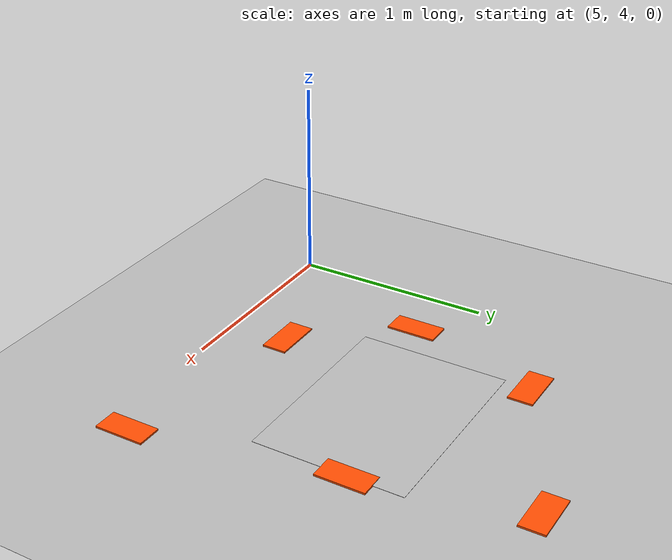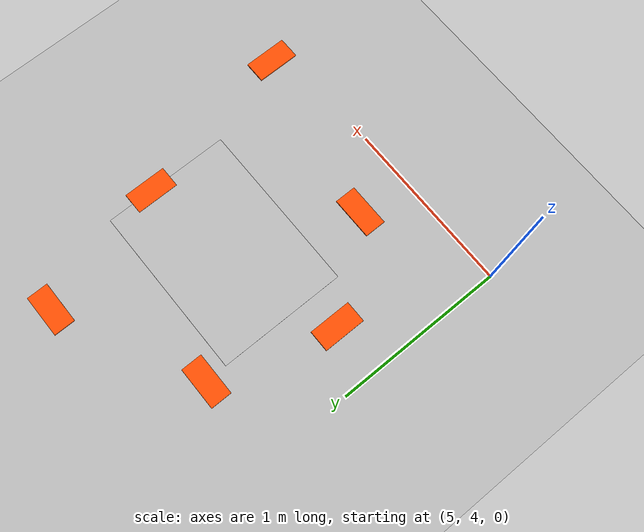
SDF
<sdf version="1.5">
 <world name="default">
  <include><uri>model://sun</uri></include>
  <include><uri>model://aruco_206</uri><pose>4.5 4.5 0 0 0 0</pose></include>
  <include><uri>model://aruco_201</uri><pose>6 5 0.005 0 0 0</pose></include>
  <include><uri>model://boat_a</uri><name>boat_a_1</name><pose>6.5 5.1 0 0 0 0</pose></include>
  <include><uri>model://boat_a</uri><name>boat_a_2</name><pose>6.3 5.9 0 0 0 1.5707963267948966</pose></include>
  <include><uri>model://boat_a</uri><name>boat_a_3</name><pose>5.3 4.8 0 0 0 0</pose></include>
  <include><uri>model://boat_a</uri><name>boat_a_4</name><pose>5.5 5.5 0 0 0 1.5707963267948966</pose></include>
  <include><uri>model://boat_a</uri><name>boat_a_5</name><pose>6.7 4.1 0 0 0 0</pose></include>
  <include><uri>model://boat_a</uri><name>boat_a_6</name><pose>5.7 4.3 0 0 0 1.5707963267948966</pose></include>
  <scene>
   <ambient>0.8 0.8 0.8 1</ambient>
   <background>0.8 0.9 1 1</background>
   <shadows>false</shadows>
   <grid>false</grid>
   <origin_visual>false</origin_visual>
  </scene>
  <physics name="default_physics" default="0" type="ode">
   <gravity>0 0 -9.8066</gravity>
   <ode>
    <solver>
     <type>quick</type>
     <iters>10</iters>
     <sor>1.3</sor>
     <use_dynamic_moi_rescaling>0</use_dynamic_moi_rescaling>
    </solver>
    <constraints>
     <cfm>0</cfm>
     <erp>0.2</erp>
     <contact_max_correcting_vel>100</contact_max_correcting_vel>
     <contact_surface_layer>0.001</contact_surface_layer>
    </constraints>
   </ode>
   <max_step_size>0.004</max_step_size>
   <real_time_factor>1</real_time_factor>
   <real_time_update_rate>250</real_time_update_rate>
   <magnetic_field>6.0e-6 2.3e-5 -4.2e-5</magnetic_field>
  </physics>
 </world>
</sdf>

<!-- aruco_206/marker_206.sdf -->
<sdf version="1.5">
    <model name="aruco_206">
        <static>true</static>
        <link name="marker_206_link">
            <pose>0 0 1e-3 0 0 1.5707963267948966</pose>
            <visual name="visual_marker_206">
                <cast_shadows>false</cast_shadows>
                <geometry>
                    <box>
                        <size>11 11 1e-4</size>
                    </box>
                </geometry>
                <material>
                    <script>
                        <uri>model://aruco_206/materials/scripts</uri>
                        <uri>model://aruco_206/materials/textures</uri>
                        <name>aruco/marker_206</name>
                    </script>
                </material>
            </visual>
        </link>
    </model>
</sdf>

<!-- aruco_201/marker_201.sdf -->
<sdf version="1.5">
  <model name="aruco_201">
    <static>true</static>
    <link name="marker_201_link">
      <pose>0 0 1e-3 0 0 1.5707963267948966</pose>
      <visual name="visual_marker_201">
        <cast_shadows>false</cast_shadows>
        <geometry>
          <box>
            <size>0.75 1 1e-3</size>
          </box>
        </geometry>
        <material>
          <script>
            <uri>model://aruco_201/materials/scripts</uri>
            <uri>model://aruco_201/materials/textures</uri>
            <name>aruco/marker_201</name>
          </script>
        </material>
      </visual>
    </link>
  </model>
</sdf>

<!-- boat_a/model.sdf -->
<sdf version='1.6'>
  <model name='boat_a'>
    <link name='link'>
      <inertial>
        <mass>1</mass>
        <inertia>
          <ixx>0.166667</ixx>
          <ixy>0</ixy>
          <ixz>0</ixz>
          <iyy>0.166667</iyy>
          <iyz>0</iyz>
          <izz>0.166667</izz>
        </inertia>
        <pose frame=''>0 0 0 0 -0 0</pose>
      </inertial>
      <self_collide>0</self_collide>
      <enable_wind>0</enable_wind>
      <kinematic>0</kinematic>
      <pose frame=''>0 0 0 0 -0 0</pose>
      <gravity>1</gravity>
      <visual name='visual'>
        <geometry>
          <box>
            <size>0.125 0.25 0.02</size>
          </box>
        </geometry>
        <material>
          <script>
            <name>Gazebo/Grey</name>
            <uri>file://media/materials/scripts/gazebo.material</uri>
          </script>
          <shader type='pixel'>
            <normal_map>__default__</normal_map>
          </shader>
          <ambient>1 0.3 0 1</ambient>
          <diffuse>1 0.3 0 1</diffuse>
          <specular>0 0 0 1</specular>
          <emissive>0 0 0 1</emissive>
        </material>
        <pose frame=''>0 0 0 0 -0 0</pose>
        <transparency>0</transparency>
        <cast_shadows>1</cast_shadows>
      </visual>
      <collision name='collision'>
        <laser_retro>0</laser_retro>
        <max_contacts>10</max_contacts>
        <pose frame=''>0 0 0 0 -0 0</pose>
        <geometry>
          <box>
            <size>0.125 0.25 0.02</size>
          </box>
        </geometry>
        <surface>
          <friction>
            <ode>
              <mu>1</mu>
              <mu2>1</mu2>
              <fdir1>0 0 0</fdir1>
              <slip1>0</slip1>
              <slip2>0</slip2>
            </ode>
            <torsional>
              <coefficient>1</coefficient>
              <patch_radius>0</patch_radius>
              <surface_radius>0</surface_radius>
              <use_patch_radius>1</use_patch_radius>
              <ode>
                <slip>0</slip>
              </ode>
            </torsional>
          </friction>
          <bounce>
            <restitution_coefficient>0</restitution_coefficient>
            <threshold>1e+06</threshold>
          </bounce>
          <contact>
            <collide_without_contact>0</collide_without_contact>
            <collide_without_contact_bitmask>1</collide_without_contact_bitmask>
            <collide_bitmask>1</collide_bitmask>
            <ode>
              <soft_cfm>0</soft_cfm>
              <soft_erp>0.2</soft_erp>
              <kp>1e+13</kp>
              <kd>1</kd>
              <max_vel>0.01</max_vel>
              <min_depth>0</min_depth>
            </ode>
            <bullet>
              <split_impulse>1</split_impulse>
              <split_impulse_penetration_threshold>-0.01</split_impulse_penetration_threshold>
              <soft_cfm>0</soft_cfm>
              <soft_erp>0.2</soft_erp>
              <kp>1e+13</kp>
              <kd>1</kd>
            </bullet>
          </contact>
        </surface>
      </collision>
    </link>
    <static>1</static>
    <allow_auto_disable>1</allow_auto_disable>
  </model>
</sdf>
